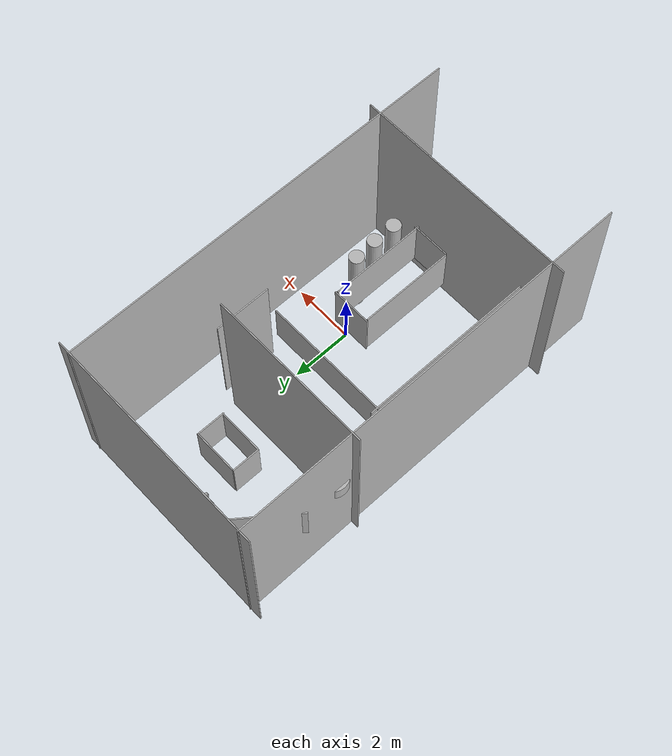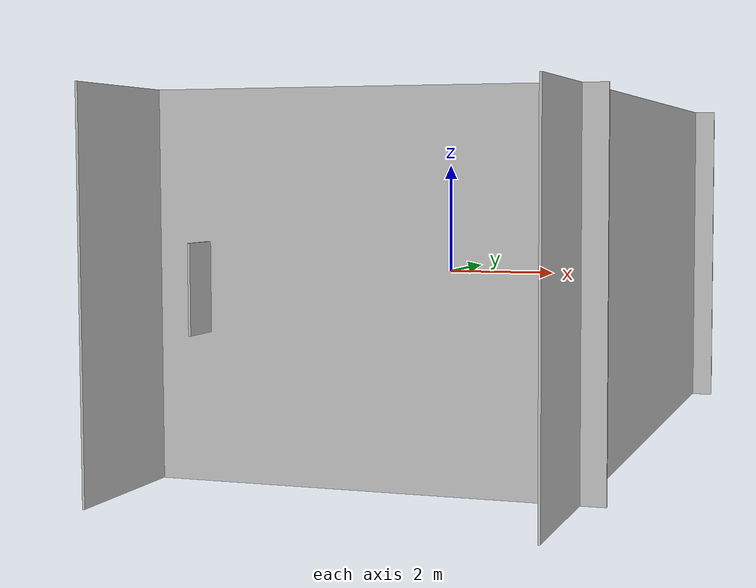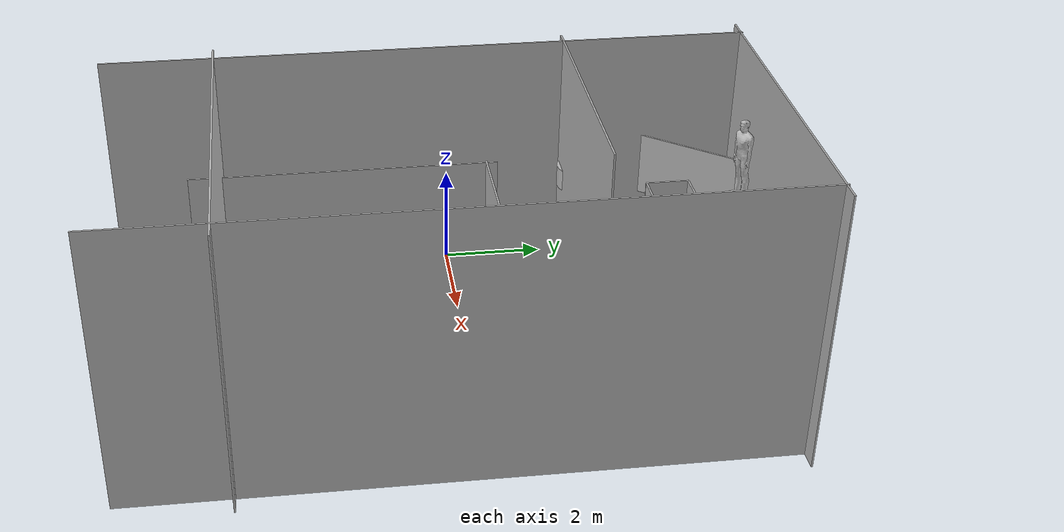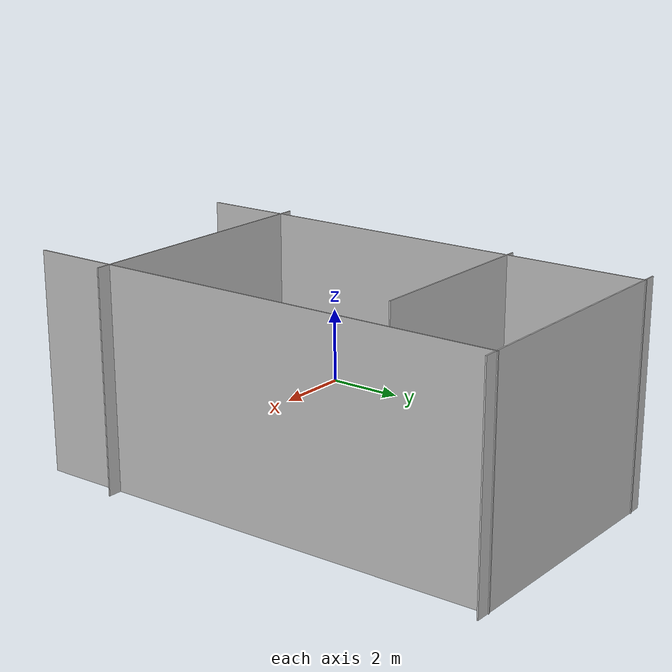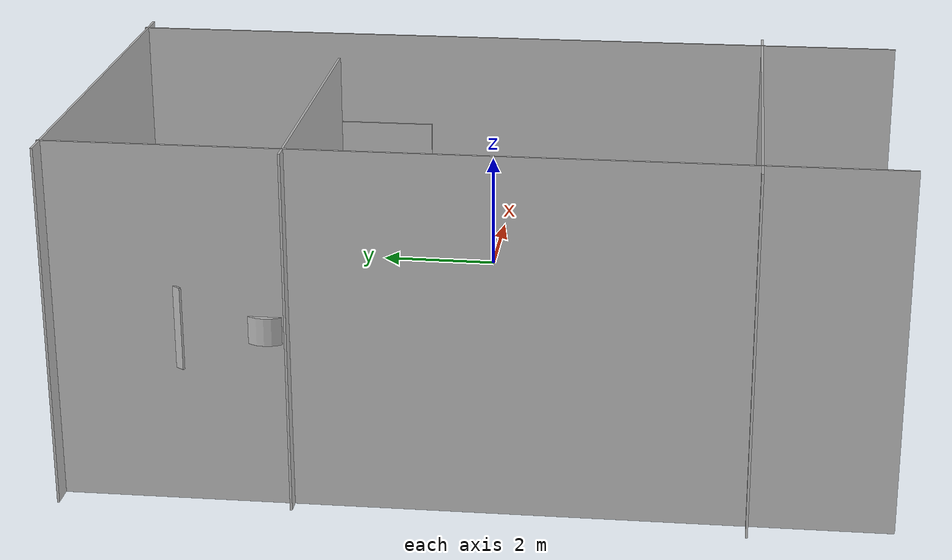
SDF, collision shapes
<?xml version='1.0'?>
<sdf version='1.6'>
  <model name='Kitchen_Dining_collision'>
    <link name='link'>
      <pose frame=''>0 0 0 0 -0 0</pose>
      <inertial>
        <mass>1</mass>
        <pose frame=''>0 0 0 0 -0 0</pose>
        <inertia>
          <ixx>1</ixx>
          <ixy>0</ixy>
          <ixz>0</ixz>
          <iyy>1</iyy>
          <iyz>0</iyz>
          <izz>1</izz>
        </inertia>
      </inertial>
      <self_collide>0</self_collide>
      <kinematic>0</kinematic>
      <gravity>1</gravity>
      <visual name='visual'>
        <geometry>
          <mesh>
            <uri>model://kitchen_dining/meshes/kitchen_dining.dae</uri>
          </mesh>
        </geometry>
        <material>
          <shader type='pixel'>
            <normal_map>__default__</normal_map>
          </shader>
        </material>
        <pose frame=''>0 0 0 0 -0 0</pose>
        <cast_shadows>1</cast_shadows>
        <transparency>0</transparency>
      </visual>
      <collision name='collision_4'>
        <laser_retro>0</laser_retro>
        <max_contacts>10</max_contacts>
        <pose frame=''>0 -4.75 0 0 -0 0</pose>
        <geometry>
          <box>
            <size>8.04 0.04 6.5</size>
          </box>
        </geometry>
        <surface>
          <friction>
            <ode>
              <mu>1</mu>
              <mu2>1</mu2>
              <fdir1>0 0 0</fdir1>
              <slip1>0</slip1>
              <slip2>0</slip2>
            </ode>
            <torsional>
              <coefficient>1</coefficient>
              <patch_radius>0</patch_radius>
              <surface_radius>0</surface_radius>
              <use_patch_radius>1</use_patch_radius>
              <ode>
                <slip>0</slip>
              </ode>
            </torsional>
          </friction>
          <bounce>
            <restitution_coefficient>0</restitution_coefficient>
            <threshold>1e+06</threshold>
          </bounce>
          <contact>
            <collide_without_contact>0</collide_without_contact>
            <collide_without_contact_bitmask>1</collide_without_contact_bitmask>
            <collide_bitmask>1</collide_bitmask>
            <ode>
              <soft_cfm>0</soft_cfm>
              <soft_erp>0.2</soft_erp>
              <kp>1e+13</kp>
              <kd>1</kd>
              <max_vel>0.01</max_vel>
              <min_depth>0</min_depth>
            </ode>
            <bullet>
              <split_impulse>1</split_impulse>
              <split_impulse_penetration_threshold>-0.01</split_impulse_penetration_threshold>
              <soft_cfm>0</soft_cfm>
              <soft_erp>0.2</soft_erp>
              <kp>1e+13</kp>
              <kd>1</kd>
            </bullet>
          </contact>
        </surface>
      </collision>
      <collision name='collision_2'>
        <laser_retro>0</laser_retro>
        <max_contacts>10</max_contacts>
        <pose frame=''>-3.58 0 0 0 -0 0</pose>
        <geometry>
          <box>
            <size>0.04 14.5 6.5</size>
          </box>
        </geometry>
        <surface>
          <friction>
            <ode>
              <mu>1</mu>
              <mu2>1</mu2>
              <fdir1>0 0 0</fdir1>
              <slip1>0</slip1>
              <slip2>0</slip2>
            </ode>
            <torsional>
              <coefficient>1</coefficient>
              <patch_radius>0</patch_radius>
              <surface_radius>0</surface_radius>
              <use_patch_radius>1</use_patch_radius>
              <ode>
                <slip>0</slip>
              </ode>
            </torsional>
          </friction>
          <bounce>
            <restitution_coefficient>0</restitution_coefficient>
            <threshold>1e+06</threshold>
          </bounce>
          <contact>
            <collide_without_contact>0</collide_without_contact>
            <collide_without_contact_bitmask>1</collide_without_contact_bitmask>
            <collide_bitmask>1</collide_bitmask>
            <ode>
              <soft_cfm>0</soft_cfm>
              <soft_erp>0.2</soft_erp>
              <kp>1e+13</kp>
              <kd>1</kd>
              <max_vel>0.01</max_vel>
              <min_depth>0</min_depth>
            </ode>
            <bullet>
              <split_impulse>1</split_impulse>
              <split_impulse_penetration_threshold>-0.01</split_impulse_penetration_threshold>
              <soft_cfm>0</soft_cfm>
              <soft_erp>0.2</soft_erp>
              <kp>1e+13</kp>
              <kd>1</kd>
            </bullet>
          </contact>
        </surface>
      </collision>
      <collision name='collision_7'>
        <laser_retro>0</laser_retro>
        <max_contacts>10</max_contacts>
        <pose frame=''>-0.5 5.6 0 0 -0 0</pose>
        <geometry>
          <box>
            <size>1.54 0.04 1.5</size>
          </box>
        </geometry>
        <surface>
          <friction>
            <ode>
              <mu>1</mu>
              <mu2>1</mu2>
              <fdir1>0 0 0</fdir1>
              <slip1>0</slip1>
              <slip2>0</slip2>
            </ode>
            <torsional>
              <coefficient>1</coefficient>
              <patch_radius>0</patch_radius>
              <surface_radius>0</surface_radius>
              <use_patch_radius>1</use_patch_radius>
              <ode>
                <slip>0</slip>
              </ode>
            </torsional>
          </friction>
          <bounce>
            <restitution_coefficient>0</restitution_coefficient>
            <threshold>1e+06</threshold>
          </bounce>
          <contact>
            <collide_without_contact>0</collide_without_contact>
            <collide_without_contact_bitmask>1</collide_without_contact_bitmask>
            <collide_bitmask>1</collide_bitmask>
            <ode>
              <soft_cfm>0</soft_cfm>
              <soft_erp>0.2</soft_erp>
              <kp>1e+13</kp>
              <kd>1</kd>
              <max_vel>0.01</max_vel>
              <min_depth>0</min_depth>
            </ode>
            <bullet>
              <split_impulse>1</split_impulse>
              <split_impulse_penetration_threshold>-0.01</split_impulse_penetration_threshold>
              <soft_cfm>0</soft_cfm>
              <soft_erp>0.2</soft_erp>
              <kp>1e+13</kp>
              <kd>1</kd>
            </bullet>
          </contact>
        </surface>
      </collision>
      <collision name='collision_5'>
        <laser_retro>0</laser_retro>
        <max_contacts>10</max_contacts>
        <pose frame=''>-1 3.1 0 0 -0 0</pose>
        <geometry>
          <box>
            <size>5.75 0.04 6.5</size>
          </box>
        </geometry>
        <surface>
          <friction>
            <ode>
              <mu>1</mu>
              <mu2>1</mu2>
              <fdir1>0 0 0</fdir1>
              <slip1>0</slip1>
              <slip2>0</slip2>
            </ode>
            <torsional>
              <coefficient>1</coefficient>
              <patch_radius>0</patch_radius>
              <surface_radius>0</surface_radius>
              <use_patch_radius>1</use_patch_radius>
              <ode>
                <slip>0</slip>
              </ode>
            </torsional>
          </friction>
          <bounce>
            <restitution_coefficient>0</restitution_coefficient>
            <threshold>1e+06</threshold>
          </bounce>
          <contact>
            <collide_without_contact>0</collide_without_contact>
            <collide_without_contact_bitmask>1</collide_without_contact_bitmask>
            <collide_bitmask>1</collide_bitmask>
            <ode>
              <soft_cfm>0</soft_cfm>
              <soft_erp>0.2</soft_erp>
              <kp>1e+13</kp>
              <kd>1</kd>
              <max_vel>0.01</max_vel>
              <min_depth>0</min_depth>
            </ode>
            <bullet>
              <split_impulse>1</split_impulse>
              <split_impulse_penetration_threshold>-0.01</split_impulse_penetration_threshold>
              <soft_cfm>0</soft_cfm>
              <soft_erp>0.2</soft_erp>
              <kp>1e+13</kp>
              <kd>1</kd>
            </bullet>
          </contact>
        </surface>
      </collision>
      <collision name='collision_1'>
        <laser_retro>0</laser_retro>
        <max_contacts>10</max_contacts>
        <pose frame=''>3.58 0 0 0 -0 0</pose>
        <geometry>
          <box>
            <size>0.04 14.5 6.5</size>
          </box>
        </geometry>
        <surface>
          <friction>
            <ode>
              <mu>1</mu>
              <mu2>1</mu2>
              <fdir1>0 0 0</fdir1>
              <slip1>0</slip1>
              <slip2>0</slip2>
            </ode>
            <torsional>
              <coefficient>1</coefficient>
              <patch_radius>0</patch_radius>
              <surface_radius>0</surface_radius>
              <use_patch_radius>1</use_patch_radius>
              <ode>
                <slip>0</slip>
              </ode>
            </torsional>
          </friction>
          <bounce>
            <restitution_coefficient>0</restitution_coefficient>
            <threshold>1e+06</threshold>
          </bounce>
          <contact>
            <collide_without_contact>0</collide_without_contact>
            <collide_without_contact_bitmask>1</collide_without_contact_bitmask>
            <collide_bitmask>1</collide_bitmask>
            <ode>
              <soft_cfm>0</soft_cfm>
              <soft_erp>0.2</soft_erp>
              <kp>1e+13</kp>
              <kd>1</kd>
              <max_vel>0.01</max_vel>
              <min_depth>0</min_depth>
            </ode>
            <bullet>
              <split_impulse>1</split_impulse>
              <split_impulse_penetration_threshold>-0.01</split_impulse_penetration_threshold>
              <soft_cfm>0</soft_cfm>
              <soft_erp>0.2</soft_erp>
              <kp>1e+13</kp>
              <kd>1</kd>
            </bullet>
          </contact>
        </surface>
      </collision>
      <collision name='collision_3'>
        <laser_retro>0</laser_retro>
        <max_contacts>10</max_contacts>
        <pose frame=''>0 7.2 0 0 -0 0</pose>
        <geometry>
          <box>
            <size>8.04 0.04 6.5</size>
          </box>
        </geometry>
        <surface>
          <friction>
            <ode>
              <mu>1</mu>
              <mu2>1</mu2>
              <fdir1>0 0 0</fdir1>
              <slip1>0</slip1>
              <slip2>0</slip2>
            </ode>
            <torsional>
              <coefficient>1</coefficient>
              <patch_radius>0</patch_radius>
              <surface_radius>0</surface_radius>
              <use_patch_radius>1</use_patch_radius>
              <ode>
                <slip>0</slip>
              </ode>
            </torsional>
          </friction>
          <bounce>
            <restitution_coefficient>0</restitution_coefficient>
            <threshold>1e+06</threshold>
          </bounce>
          <contact>
            <collide_without_contact>0</collide_without_contact>
            <collide_without_contact_bitmask>1</collide_without_contact_bitmask>
            <collide_bitmask>1</collide_bitmask>
            <ode>
              <soft_cfm>0</soft_cfm>
              <soft_erp>0.2</soft_erp>
              <kp>1e+13</kp>
              <kd>1</kd>
              <max_vel>0.01</max_vel>
              <min_depth>0</min_depth>
            </ode>
            <bullet>
              <split_impulse>1</split_impulse>
              <split_impulse_penetration_threshold>-0.01</split_impulse_penetration_threshold>
              <soft_cfm>0</soft_cfm>
              <soft_erp>0.2</soft_erp>
              <kp>1e+13</kp>
              <kd>1</kd>
            </bullet>
          </contact>
        </surface>
      </collision>
      <collision name='collision_6'>
        <laser_retro>0</laser_retro>
        <max_contacts>10</max_contacts>
        <pose frame=''>-0.5 4.65 0 0 -0 0</pose>
        <geometry>
          <box>
            <size>1.54 0.04 1.5</size>
          </box>
        </geometry>
        <surface>
          <friction>
            <ode>
              <mu>1</mu>
              <mu2>1</mu2>
              <fdir1>0 0 0</fdir1>
              <slip1>0</slip1>
              <slip2>0</slip2>
            </ode>
            <torsional>
              <coefficient>1</coefficient>
              <patch_radius>0</patch_radius>
              <surface_radius>0</surface_radius>
              <use_patch_radius>1</use_patch_radius>
              <ode>
                <slip>0</slip>
              </ode>
            </torsional>
          </friction>
          <bounce>
            <restitution_coefficient>0</restitution_coefficient>
            <threshold>1e+06</threshold>
          </bounce>
          <contact>
            <collide_without_contact>0</collide_without_contact>
            <collide_without_contact_bitmask>1</collide_without_contact_bitmask>
            <collide_bitmask>1</collide_bitmask>
            <ode>
              <soft_cfm>0</soft_cfm>
              <soft_erp>0.2</soft_erp>
              <kp>1e+13</kp>
              <kd>1</kd>
              <max_vel>0.01</max_vel>
              <min_depth>0</min_depth>
            </ode>
            <bullet>
              <split_impulse>1</split_impulse>
              <split_impulse_penetration_threshold>-0.01</split_impulse_penetration_threshold>
              <soft_cfm>0</soft_cfm>
              <soft_erp>0.2</soft_erp>
              <kp>1e+13</kp>
              <kd>1</kd>
            </bullet>
          </contact>
        </surface>
      </collision>
      <collision name='collision_8'>
        <laser_retro>0</laser_retro>
        <max_contacts>10</max_contacts>
        <pose frame=''>0.25 5.1 0 0 -0 0</pose>
        <geometry>
          <box>
            <size>0.04 0.97 1.5</size>
          </box>
        </geometry>
        <surface>
          <friction>
            <ode>
              <mu>1</mu>
              <mu2>1</mu2>
              <fdir1>0 0 0</fdir1>
              <slip1>0</slip1>
              <slip2>0</slip2>
            </ode>
            <torsional>
              <coefficient>1</coefficient>
              <patch_radius>0</patch_radius>
              <surface_radius>0</surface_radius>
              <use_patch_radius>1</use_patch_radius>
              <ode>
                <slip>0</slip>
              </ode>
            </torsional>
          </friction>
          <bounce>
            <restitution_coefficient>0</restitution_coefficient>
            <threshold>1e+06</threshold>
          </bounce>
          <contact>
            <collide_without_contact>0</collide_without_contact>
            <collide_without_contact_bitmask>1</collide_without_contact_bitmask>
            <collide_bitmask>1</collide_bitmask>
            <ode>
              <soft_cfm>0</soft_cfm>
              <soft_erp>0.2</soft_erp>
              <kp>1e+13</kp>
              <kd>1</kd>
              <max_vel>0.01</max_vel>
              <min_depth>0</min_depth>
            </ode>
            <bullet>
              <split_impulse>1</split_impulse>
              <split_impulse_penetration_threshold>-0.01</split_impulse_penetration_threshold>
              <soft_cfm>0</soft_cfm>
              <soft_erp>0.2</soft_erp>
              <kp>1e+13</kp>
              <kd>1</kd>
            </bullet>
          </contact>
        </surface>
      </collision>
      <collision name='collision_9'>
        <laser_retro>0</laser_retro>
        <max_contacts>10</max_contacts>
        <pose frame=''>-1.3 5.12 0 0 -0 0</pose>
        <geometry>
          <box>
            <size>0.04 0.97 1.5</size>
          </box>
        </geometry>
        <surface>
          <friction>
            <ode>
              <mu>1</mu>
              <mu2>1</mu2>
              <fdir1>0 0 0</fdir1>
              <slip1>0</slip1>
              <slip2>0</slip2>
            </ode>
            <torsional>
              <coefficient>1</coefficient>
              <patch_radius>0</patch_radius>
              <surface_radius>0</surface_radius>
              <use_patch_radius>1</use_patch_radius>
              <ode>
                <slip>0</slip>
              </ode>
            </torsional>
          </friction>
          <bounce>
            <restitution_coefficient>0</restitution_coefficient>
            <threshold>1e+06</threshold>
          </bounce>
          <contact>
            <collide_without_contact>0</collide_without_contact>
            <collide_without_contact_bitmask>1</collide_without_contact_bitmask>
            <collide_bitmask>1</collide_bitmask>
            <ode>
              <soft_cfm>0</soft_cfm>
              <soft_erp>0.2</soft_erp>
              <kp>1e+13</kp>
              <kd>1</kd>
              <max_vel>0.01</max_vel>
              <min_depth>0</min_depth>
            </ode>
            <bullet>
              <split_impulse>1</split_impulse>
              <split_impulse_penetration_threshold>-0.01</split_impulse_penetration_threshold>
              <soft_cfm>0</soft_cfm>
              <soft_erp>0.2</soft_erp>
              <kp>1e+13</kp>
              <kd>1</kd>
            </bullet>
          </contact>
        </surface>
      </collision>
      <collision name='collision_10'>
        <laser_retro>0</laser_retro>
        <max_contacts>10</max_contacts>
        <pose frame=''>-2.85 6 0 0 0 -0.66</pose>
        <geometry>
          <box>
            <size>0.04 2.75 1.5</size>
          </box>
        </geometry>
        <surface>
          <friction>
            <ode>
              <mu>1</mu>
              <mu2>1</mu2>
              <fdir1>0 0 0</fdir1>
              <slip1>0</slip1>
              <slip2>0</slip2>
            </ode>
            <torsional>
              <coefficient>1</coefficient>
              <patch_radius>0</patch_radius>
              <surface_radius>0</surface_radius>
              <use_patch_radius>1</use_patch_radius>
              <ode>
                <slip>0</slip>
              </ode>
            </torsional>
          </friction>
          <bounce>
            <restitution_coefficient>0</restitution_coefficient>
            <threshold>1e+06</threshold>
          </bounce>
          <contact>
            <collide_without_contact>0</collide_without_contact>
            <collide_without_contact_bitmask>1</collide_without_contact_bitmask>
            <collide_bitmask>1</collide_bitmask>
            <ode>
              <soft_cfm>0</soft_cfm>
              <soft_erp>0.2</soft_erp>
              <kp>1e+13</kp>
              <kd>1</kd>
              <max_vel>0.01</max_vel>
              <min_depth>0</min_depth>
            </ode>
            <bullet>
              <split_impulse>1</split_impulse>
              <split_impulse_penetration_threshold>-0.01</split_impulse_penetration_threshold>
              <soft_cfm>0</soft_cfm>
              <soft_erp>0.2</soft_erp>
              <kp>1e+13</kp>
              <kd>1</kd>
            </bullet>
          </contact>
        </surface>
      </collision>
      <collision name='collision_11'>
        <laser_retro>0</laser_retro>
        <max_contacts>10</max_contacts>
        <pose frame=''>-2.67 -2 0 0 -0 0</pose>
        <geometry>
          <box>
            <size>0.04 7 1.5</size>
          </box>
        </geometry>
        <surface>
          <friction>
            <ode>
              <mu>1</mu>
              <mu2>1</mu2>
              <fdir1>0 0 0</fdir1>
              <slip1>0</slip1>
              <slip2>0</slip2>
            </ode>
            <torsional>
              <coefficient>1</coefficient>
              <patch_radius>0</patch_radius>
              <surface_radius>0</surface_radius>
              <use_patch_radius>1</use_patch_radius>
              <ode>
                <slip>0</slip>
              </ode>
            </torsional>
          </friction>
          <bounce>
            <restitution_coefficient>0</restitution_coefficient>
            <threshold>1e+06</threshold>
          </bounce>
          <contact>
            <collide_without_contact>0</collide_without_contact>
            <collide_without_contact_bitmask>1</collide_without_contact_bitmask>
            <collide_bitmask>1</collide_bitmask>
            <ode>
              <soft_cfm>0</soft_cfm>
              <soft_erp>0.2</soft_erp>
              <kp>1e+13</kp>
              <kd>1</kd>
              <max_vel>0.01</max_vel>
              <min_depth>0</min_depth>
            </ode>
            <bullet>
              <split_impulse>1</split_impulse>
              <split_impulse_penetration_threshold>-0.01</split_impulse_penetration_threshold>
              <soft_cfm>0</soft_cfm>
              <soft_erp>0.2</soft_erp>
              <kp>1e+13</kp>
              <kd>1</kd>
            </bullet>
          </contact>
        </surface>
      </collision>
      <collision name='collision_12'>
        <laser_retro>0</laser_retro>
        <max_contacts>10</max_contacts>
        <pose frame=''>-0.5 1.25 0 0 -0 0</pose>
        <geometry>
          <box>
            <size>4.5 0.04 1.5</size>
          </box>
        </geometry>
        <surface>
          <friction>
            <ode>
              <mu>1</mu>
              <mu2>1</mu2>
              <fdir1>0 0 0</fdir1>
              <slip1>0</slip1>
              <slip2>0</slip2>
            </ode>
            <torsional>
              <coefficient>1</coefficient>
              <patch_radius>0</patch_radius>
              <surface_radius>0</surface_radius>
              <use_patch_radius>1</use_patch_radius>
              <ode>
                <slip>0</slip>
              </ode>
            </torsional>
          </friction>
          <bounce>
            <restitution_coefficient>0</restitution_coefficient>
            <threshold>1e+06</threshold>
          </bounce>
          <contact>
            <collide_without_contact>0</collide_without_contact>
            <collide_without_contact_bitmask>1</collide_without_contact_bitmask>
            <collide_bitmask>1</collide_bitmask>
            <ode>
              <soft_cfm>0</soft_cfm>
              <soft_erp>0.2</soft_erp>
              <kp>1e+13</kp>
              <kd>1</kd>
              <max_vel>0.01</max_vel>
              <min_depth>0</min_depth>
            </ode>
            <bullet>
              <split_impulse>1</split_impulse>
              <split_impulse_penetration_threshold>-0.01</split_impulse_penetration_threshold>
              <soft_cfm>0</soft_cfm>
              <soft_erp>0.2</soft_erp>
              <kp>1e+13</kp>
              <kd>1</kd>
            </bullet>
          </contact>
        </surface>
      </collision>
      <collision name='collision_13'>
        <laser_retro>0</laser_retro>
        <max_contacts>10</max_contacts>
        <pose frame=''>1.9 2.35 0 0 -0 0</pose>
        <geometry>
          <box>
            <size>0.04 1.95 4</size>
          </box>
        </geometry>
        <surface>
          <friction>
            <ode>
              <mu>1</mu>
              <mu2>1</mu2>
              <fdir1>0 0 0</fdir1>
              <slip1>0</slip1>
              <slip2>0</slip2>
            </ode>
            <torsional>
              <coefficient>1</coefficient>
              <patch_radius>0</patch_radius>
              <surface_radius>0</surface_radius>
              <use_patch_radius>1</use_patch_radius>
              <ode>
                <slip>0</slip>
              </ode>
            </torsional>
          </friction>
          <bounce>
            <restitution_coefficient>0</restitution_coefficient>
            <threshold>1e+06</threshold>
          </bounce>
          <contact>
            <collide_without_contact>0</collide_without_contact>
            <collide_without_contact_bitmask>1</collide_without_contact_bitmask>
            <collide_bitmask>1</collide_bitmask>
            <ode>
              <soft_cfm>0</soft_cfm>
              <soft_erp>0.2</soft_erp>
              <kp>1e+13</kp>
              <kd>1</kd>
              <max_vel>0.01</max_vel>
              <min_depth>0</min_depth>
            </ode>
            <bullet>
              <split_impulse>1</split_impulse>
              <split_impulse_penetration_threshold>-0.01</split_impulse_penetration_threshold>
              <soft_cfm>0</soft_cfm>
              <soft_erp>0.2</soft_erp>
              <kp>1e+13</kp>
              <kd>1</kd>
            </bullet>
          </contact>
        </surface>
      </collision>
      <collision name='collision_14'>
        <laser_retro>0</laser_retro>
        <max_contacts>10</max_contacts>
        <pose frame=''>-0.4 -2.15 0 0 -0 0</pose>
        <geometry>
          <box>
            <size>0.04 3.3 1.75</size>
          </box>
        </geometry>
        <surface>
          <friction>
            <ode>
              <mu>1</mu>
              <mu2>1</mu2>
              <fdir1>0 0 0</fdir1>
              <slip1>0</slip1>
              <slip2>0</slip2>
            </ode>
            <torsional>
              <coefficient>1</coefficient>
              <patch_radius>0</patch_radius>
              <surface_radius>0</surface_radius>
              <use_patch_radius>1</use_patch_radius>
              <ode>
                <slip>0</slip>
              </ode>
            </torsional>
          </friction>
          <bounce>
            <restitution_coefficient>0</restitution_coefficient>
            <threshold>1e+06</threshold>
          </bounce>
          <contact>
            <collide_without_contact>0</collide_without_contact>
            <collide_without_contact_bitmask>1</collide_without_contact_bitmask>
            <collide_bitmask>1</collide_bitmask>
            <ode>
              <soft_cfm>0</soft_cfm>
              <soft_erp>0.2</soft_erp>
              <kp>1e+13</kp>
              <kd>1</kd>
              <max_vel>0.01</max_vel>
              <min_depth>0</min_depth>
            </ode>
            <bullet>
              <split_impulse>1</split_impulse>
              <split_impulse_penetration_threshold>-0.01</split_impulse_penetration_threshold>
              <soft_cfm>0</soft_cfm>
              <soft_erp>0.2</soft_erp>
              <kp>1e+13</kp>
              <kd>1</kd>
            </bullet>
          </contact>
        </surface>
      </collision>
      <collision name='collision_15'>
        <laser_retro>0</laser_retro>
        <max_contacts>10</max_contacts>
        <pose frame=''>0.9 -2.2 0 0 -0 0</pose>
        <geometry>
          <box>
            <size>0.04 3.4 1.75</size>
          </box>
        </geometry>
        <surface>
          <friction>
            <ode>
              <mu>1</mu>
              <mu2>1</mu2>
              <fdir1>0 0 0</fdir1>
              <slip1>0</slip1>
              <slip2>0</slip2>
            </ode>
            <torsional>
              <coefficient>1</coefficient>
              <patch_radius>0</patch_radius>
              <surface_radius>0</surface_radius>
              <use_patch_radius>1</use_patch_radius>
              <ode>
                <slip>0</slip>
              </ode>
            </torsional>
          </friction>
          <bounce>
            <restitution_coefficient>0</restitution_coefficient>
            <threshold>1e+06</threshold>
          </bounce>
          <contact>
            <collide_without_contact>0</collide_without_contact>
            <collide_without_contact_bitmask>1</collide_without_contact_bitmask>
            <collide_bitmask>1</collide_bitmask>
            <ode>
              <soft_cfm>0</soft_cfm>
              <soft_erp>0.2</soft_erp>
              <kp>1e+13</kp>
              <kd>1</kd>
              <max_vel>0.01</max_vel>
              <min_depth>0</min_depth>
            </ode>
            <bullet>
              <split_impulse>1</split_impulse>
              <split_impulse_penetration_threshold>-0.01</split_impulse_penetration_threshold>
              <soft_cfm>0</soft_cfm>
              <soft_erp>0.2</soft_erp>
              <kp>1e+13</kp>
              <kd>1</kd>
            </bullet>
          </contact>
        </surface>
      </collision>
      <collision name='collision_16'>
        <laser_retro>0</laser_retro>
        <max_contacts>10</max_contacts>
        <pose frame=''>0.25 -0.45 0 0 -0 0</pose>
        <geometry>
          <box>
            <size>1.4 0.04 1.75</size>
          </box>
        </geometry>
        <surface>
          <friction>
            <ode>
              <mu>1</mu>
              <mu2>1</mu2>
              <fdir1>0 0 0</fdir1>
              <slip1>0</slip1>
              <slip2>0</slip2>
            </ode>
            <torsional>
              <coefficient>1</coefficient>
              <patch_radius>0</patch_radius>
              <surface_radius>0</surface_radius>
              <use_patch_radius>1</use_patch_radius>
              <ode>
                <slip>0</slip>
              </ode>
            </torsional>
          </friction>
          <bounce>
            <restitution_coefficient>0</restitution_coefficient>
            <threshold>1e+06</threshold>
          </bounce>
          <contact>
            <collide_without_contact>0</collide_without_contact>
            <collide_without_contact_bitmask>1</collide_without_contact_bitmask>
            <collide_bitmask>1</collide_bitmask>
            <ode>
              <soft_cfm>0</soft_cfm>
              <soft_erp>0.2</soft_erp>
              <kp>1e+13</kp>
              <kd>1</kd>
              <max_vel>0.01</max_vel>
              <min_depth>0</min_depth>
            </ode>
            <bullet>
              <split_impulse>1</split_impulse>
              <split_impulse_penetration_threshold>-0.01</split_impulse_penetration_threshold>
              <soft_cfm>0</soft_cfm>
              <soft_erp>0.2</soft_erp>
              <kp>1e+13</kp>
              <kd>1</kd>
            </bullet>
          </contact>
        </surface>
      </collision>
      <collision name='collision_17'>
        <laser_retro>0</laser_retro>
        <max_contacts>10</max_contacts>
        <pose frame=''>1.3 -3.2 0 0 -0 0</pose>
        <geometry>
          <cylinder>
            <radius>0.25</radius>
            <length>2.5</length>
          </cylinder>
        </geometry>
        <surface>
          <friction>
            <ode>
              <mu>1</mu>
              <mu2>1</mu2>
              <fdir1>0 0 0</fdir1>
              <slip1>0</slip1>
              <slip2>0</slip2>
            </ode>
            <torsional>
              <coefficient>1</coefficient>
              <patch_radius>0</patch_radius>
              <surface_radius>0</surface_radius>
              <use_patch_radius>1</use_patch_radius>
              <ode>
                <slip>0</slip>
              </ode>
            </torsional>
          </friction>
          <bounce>
            <restitution_coefficient>0</restitution_coefficient>
            <threshold>1e+06</threshold>
          </bounce>
          <contact>
            <collide_without_contact>0</collide_without_contact>
            <collide_without_contact_bitmask>1</collide_without_contact_bitmask>
            <collide_bitmask>1</collide_bitmask>
            <ode>
              <soft_cfm>0</soft_cfm>
              <soft_erp>0.2</soft_erp>
              <kp>1e+13</kp>
              <kd>1</kd>
              <max_vel>0.01</max_vel>
              <min_depth>0</min_depth>
            </ode>
            <bullet>
              <split_impulse>1</split_impulse>
              <split_impulse_penetration_threshold>-0.01</split_impulse_penetration_threshold>
              <soft_cfm>0</soft_cfm>
              <soft_erp>0.2</soft_erp>
              <kp>1e+13</kp>
              <kd>1</kd>
            </bullet>
          </contact>
        </surface>
      </collision>
      <collision name='collision_18'>
        <laser_retro>0</laser_retro>
        <max_contacts>10</max_contacts>
        <pose frame=''>1.3 -2.4 0 0 -0 0</pose>
        <geometry>
          <cylinder>
            <radius>0.25</radius>
            <length>2.5</length>
          </cylinder>
        </geometry>
        <surface>
          <friction>
            <ode>
              <mu>1</mu>
              <mu2>1</mu2>
              <fdir1>0 0 0</fdir1>
              <slip1>0</slip1>
              <slip2>0</slip2>
            </ode>
            <torsional>
              <coefficient>1</coefficient>
              <patch_radius>0</patch_radius>
              <surface_radius>0</surface_radius>
              <use_patch_radius>1</use_patch_radius>
              <ode>
                <slip>0</slip>
              </ode>
            </torsional>
          </friction>
          <bounce>
            <restitution_coefficient>0</restitution_coefficient>
            <threshold>1e+06</threshold>
          </bounce>
          <contact>
            <collide_without_contact>0</collide_without_contact>
            <collide_without_contact_bitmask>1</collide_without_contact_bitmask>
            <collide_bitmask>1</collide_bitmask>
            <ode>
              <soft_cfm>0</soft_cfm>
              <soft_erp>0.2</soft_erp>
              <kp>1e+13</kp>
              <kd>1</kd>
              <max_vel>0.01</max_vel>
              <min_depth>0</min_depth>
            </ode>
            <bullet>
              <split_impulse>1</split_impulse>
              <split_impulse_penetration_threshold>-0.01</split_impulse_penetration_threshold>
              <soft_cfm>0</soft_cfm>
              <soft_erp>0.2</soft_erp>
              <kp>1e+13</kp>
              <kd>1</kd>
            </bullet>
          </contact>
        </surface>
      </collision>
      <collision name='collision_19'>
        <laser_retro>0</laser_retro>
        <max_contacts>10</max_contacts>
        <pose frame=''>1.25 -1.6 0 0 -0 0</pose>
        <geometry>
          <cylinder>
            <radius>0.25</radius>
            <length>2.5</length>
          </cylinder>
        </geometry>
        <surface>
          <friction>
            <ode>
              <mu>1</mu>
              <mu2>1</mu2>
              <fdir1>0 0 0</fdir1>
              <slip1>0</slip1>
              <slip2>0</slip2>
            </ode>
            <torsional>
              <coefficient>1</coefficient>
              <patch_radius>0</patch_radius>
              <surface_radius>0</surface_radius>
              <use_patch_radius>1</use_patch_radius>
              <ode>
                <slip>0</slip>
              </ode>
            </torsional>
          </friction>
          <bounce>
            <restitution_coefficient>0</restitution_coefficient>
            <threshold>1e+06</threshold>
          </bounce>
          <contact>
            <collide_without_contact>0</collide_without_contact>
            <collide_without_contact_bitmask>1</collide_without_contact_bitmask>
            <collide_bitmask>1</collide_bitmask>
            <ode>
              <soft_cfm>0</soft_cfm>
              <soft_erp>0.2</soft_erp>
              <kp>1e+13</kp>
              <kd>1</kd>
              <max_vel>0.01</max_vel>
              <min_depth>0</min_depth>
            </ode>
            <bullet>
              <split_impulse>1</split_impulse>
              <split_impulse_penetration_threshold>-0.01</split_impulse_penetration_threshold>
              <soft_cfm>0</soft_cfm>
              <soft_erp>0.2</soft_erp>
              <kp>1e+13</kp>
              <kd>1</kd>
            </bullet>
          </contact>
        </surface>
      </collision>
      <collision name='collision_20'>
        <laser_retro>0</laser_retro>
        <max_contacts>10</max_contacts>
        <pose frame=''>0.3 -3.82 0 0 -0 0</pose>
        <geometry>
          <box>
            <size>1.35 0.04 1.75</size>
          </box>
        </geometry>
        <surface>
          <friction>
            <ode>
              <mu>1</mu>
              <mu2>1</mu2>
              <fdir1>0 0 0</fdir1>
              <slip1>0</slip1>
              <slip2>0</slip2>
            </ode>
            <torsional>
              <coefficient>1</coefficient>
              <patch_radius>0</patch_radius>
              <surface_radius>0</surface_radius>
              <use_patch_radius>1</use_patch_radius>
              <ode>
                <slip>0</slip>
              </ode>
            </torsional>
          </friction>
          <bounce>
            <restitution_coefficient>0</restitution_coefficient>
            <threshold>1e+06</threshold>
          </bounce>
          <contact>
            <collide_without_contact>0</collide_without_contact>
            <collide_without_contact_bitmask>1</collide_without_contact_bitmask>
            <collide_bitmask>1</collide_bitmask>
            <ode>
              <soft_cfm>0</soft_cfm>
              <soft_erp>0.2</soft_erp>
              <kp>1e+13</kp>
              <kd>1</kd>
              <max_vel>0.01</max_vel>
              <min_depth>0</min_depth>
            </ode>
            <bullet>
              <split_impulse>1</split_impulse>
              <split_impulse_penetration_threshold>-0.01</split_impulse_penetration_threshold>
              <soft_cfm>0</soft_cfm>
              <soft_erp>0.2</soft_erp>
              <kp>1e+13</kp>
              <kd>1</kd>
            </bullet>
          </contact>
        </surface>
      </collision>
      <collision name='collision_21'>
        <laser_retro>0</laser_retro>
        <max_contacts>10</max_contacts>
        <pose frame=''>-3.2 3.5 0 0 -0 0</pose>
        <geometry>
          <cylinder>
            <radius>0.5</radius>
            <length>0.5</length>
          </cylinder>
        </geometry>
        <surface>
          <friction>
            <ode>
              <mu>1</mu>
              <mu2>1</mu2>
              <fdir1>0 0 0</fdir1>
              <slip1>0</slip1>
              <slip2>0</slip2>
            </ode>
            <torsional>
              <coefficient>1</coefficient>
              <patch_radius>0</patch_radius>
              <surface_radius>0</surface_radius>
              <use_patch_radius>1</use_patch_radius>
              <ode>
                <slip>0</slip>
              </ode>
            </torsional>
          </friction>
          <bounce>
            <restitution_coefficient>0</restitution_coefficient>
            <threshold>1e+06</threshold>
          </bounce>
          <contact>
            <collide_without_contact>0</collide_without_contact>
            <collide_without_contact_bitmask>1</collide_without_contact_bitmask>
            <collide_bitmask>1</collide_bitmask>
            <ode>
              <soft_cfm>0</soft_cfm>
              <soft_erp>0.2</soft_erp>
              <kp>1e+13</kp>
              <kd>1</kd>
              <max_vel>0.01</max_vel>
              <min_depth>0</min_depth>
            </ode>
            <bullet>
              <split_impulse>1</split_impulse>
              <split_impulse_penetration_threshold>-0.01</split_impulse_penetration_threshold>
              <soft_cfm>0</soft_cfm>
              <soft_erp>0.2</soft_erp>
              <kp>1e+13</kp>
              <kd>1</kd>
            </bullet>
          </contact>
        </surface>
      </collision>
      <collision name='collision_22'>
        <laser_retro>0</laser_retro>
        <max_contacts>10</max_contacts>
        <pose frame=''>3.58 0 0 0 -0 0</pose>
        <geometry>
          <box>
            <size>0.04 14.5 6.5</size>
          </box>
        </geometry>
        <surface>
          <friction>
            <ode>
              <mu>1</mu>
              <mu2>1</mu2>
              <fdir1>0 0 0</fdir1>
              <slip1>0</slip1>
              <slip2>0</slip2>
            </ode>
            <torsional>
              <coefficient>1</coefficient>
              <patch_radius>0</patch_radius>
              <surface_radius>0</surface_radius>
              <use_patch_radius>1</use_patch_radius>
              <ode>
                <slip>0</slip>
              </ode>
            </torsional>
          </friction>
          <bounce>
            <restitution_coefficient>0</restitution_coefficient>
            <threshold>1e+06</threshold>
          </bounce>
          <contact>
            <collide_without_contact>0</collide_without_contact>
            <collide_without_contact_bitmask>1</collide_without_contact_bitmask>
            <collide_bitmask>1</collide_bitmask>
            <ode>
              <soft_cfm>0</soft_cfm>
              <soft_erp>0.2</soft_erp>
              <kp>1e+13</kp>
              <kd>1</kd>
              <max_vel>0.01</max_vel>
              <min_depth>0</min_depth>
            </ode>
            <bullet>
              <split_impulse>1</split_impulse>
              <split_impulse_penetration_threshold>-0.01</split_impulse_penetration_threshold>
              <soft_cfm>0</soft_cfm>
              <soft_erp>0.2</soft_erp>
              <kp>1e+13</kp>
              <kd>1</kd>
            </bullet>
          </contact>
        </surface>
      </collision>
    </link>
    <model name='person_standing'>
      <link name='link'>
        <inertial>
          <pose frame=''>0 -0.1 0.95 0 -0 0</pose>
          <mass>80</mass>
          <inertia>
            <ixx>24.88</ixx>
            <ixy>0</ixy>
            <ixz>0</ixz>
            <iyy>25.73</iyy>
            <iyz>0</iyz>
            <izz>2.48</izz>
          </inertia>
        </inertial>
        <collision name='bottom'>
          <pose frame=''>0 -0.1 0.01 0 -0 0</pose>
          <geometry>
            <box>
              <size>0.5 0.35 0.02</size>
            </box>
          </geometry>
        </collision>
        <collision name='person'>
          <pose frame=''>0 0 0.02 0.04 -0 0</pose>
          <geometry>
            <mesh>
              <uri>model://person_standing/meshes/standing.dae</uri>
            </mesh>
          </geometry>
        </collision>
        <visual name='visual'>
          <pose frame=''>0 0 0.02 0.04 -0 0</pose>
          <geometry>
            <mesh>
              <uri>model://person_standing/meshes/standing.dae</uri>
            </mesh>
          </geometry>
        </visual>
      </link>
      <pose frame=''>-1.8 7.033 0 0 -0 0.3</pose>
    </model>
    <static>1</static>
    <allow_auto_disable>1</allow_auto_disable>
  </model>
</sdf>
